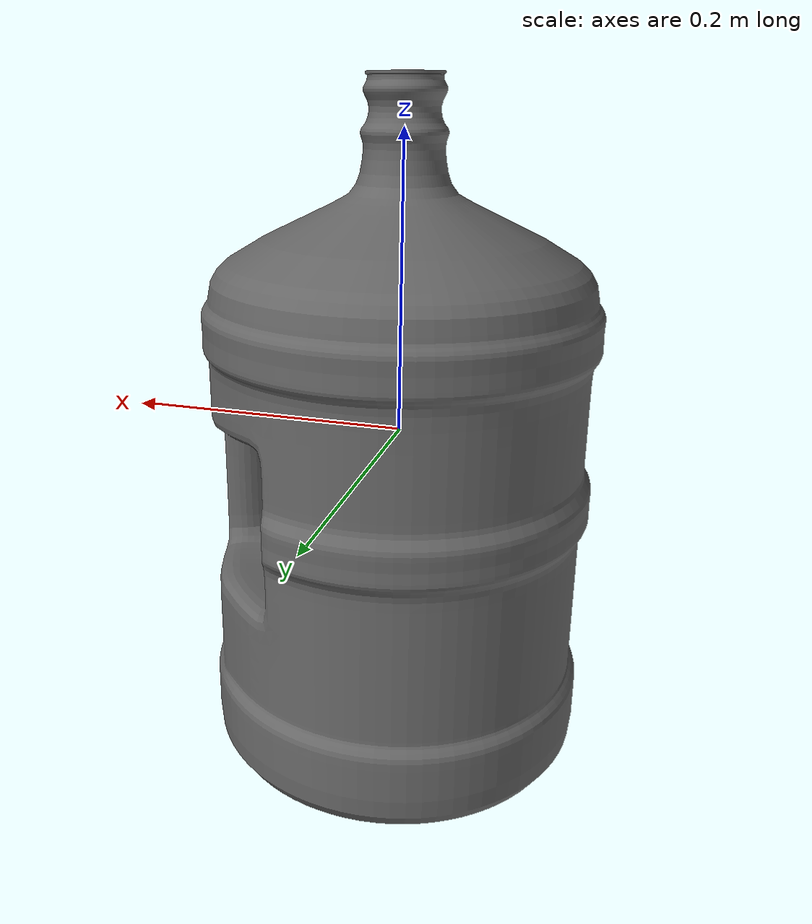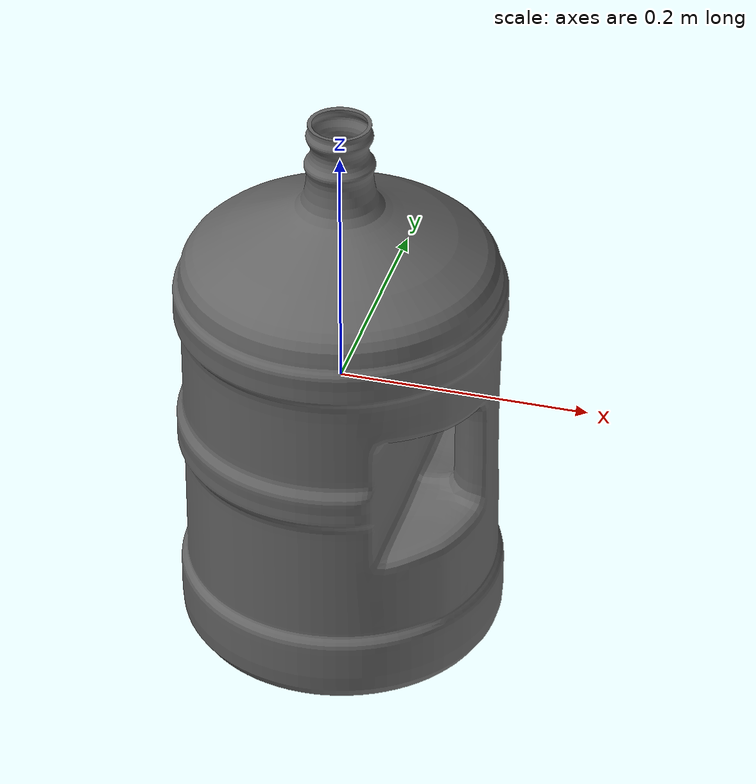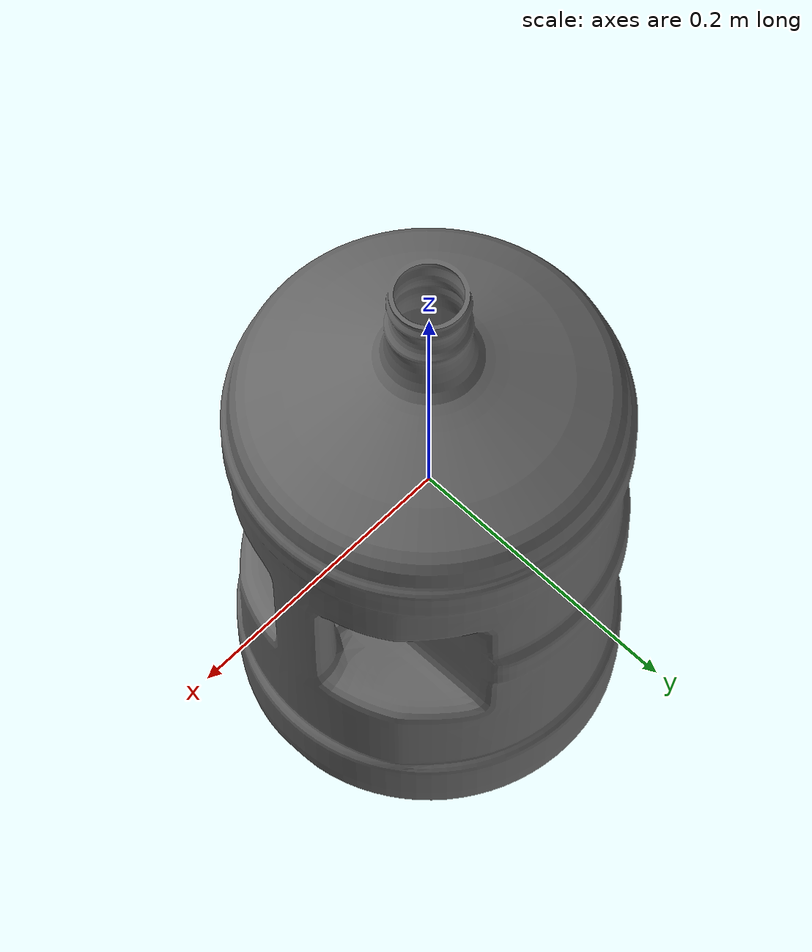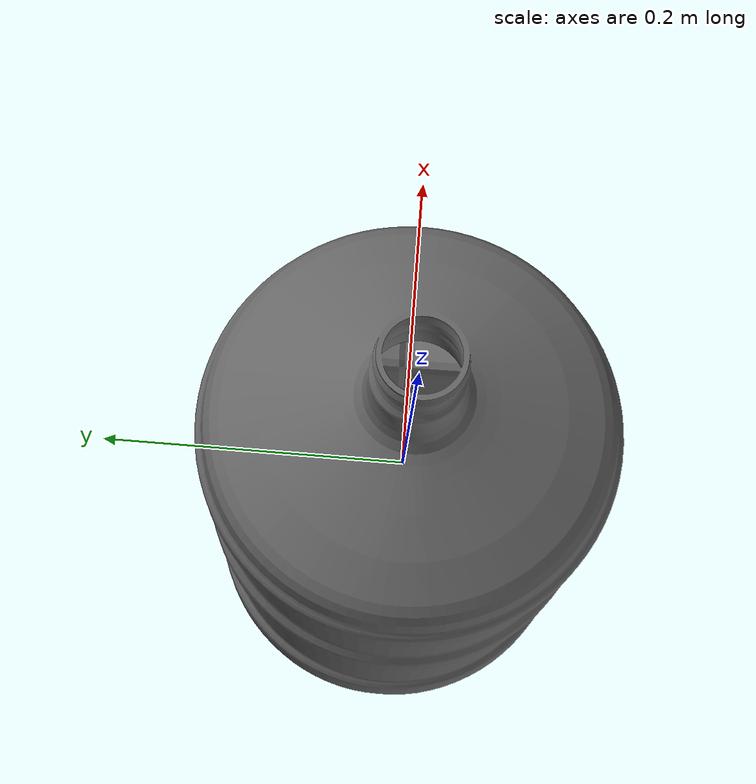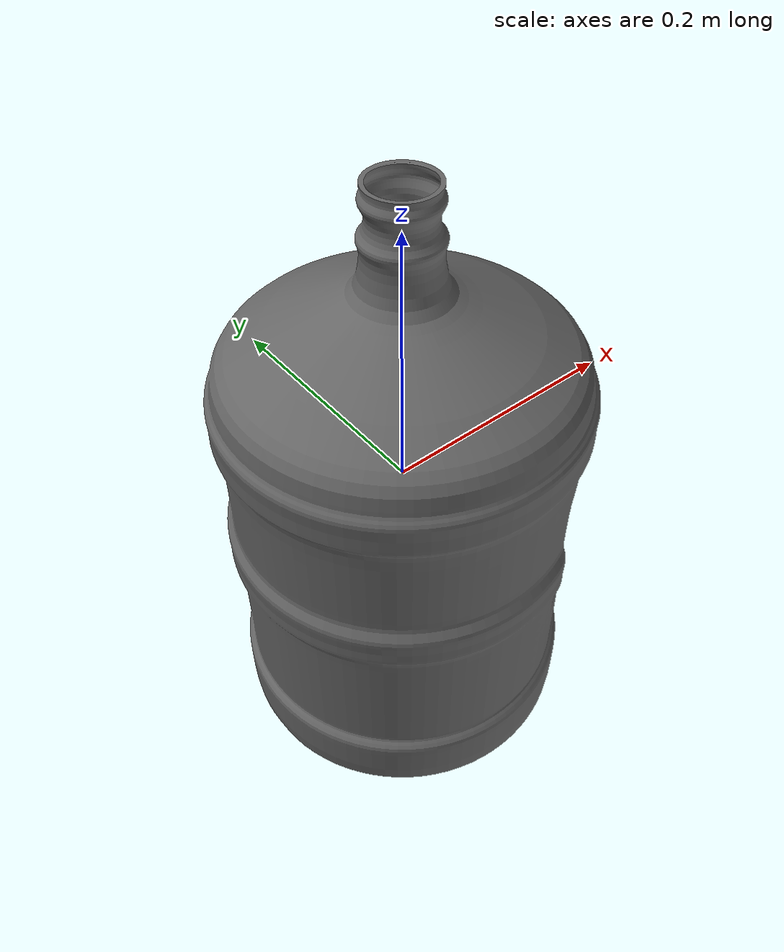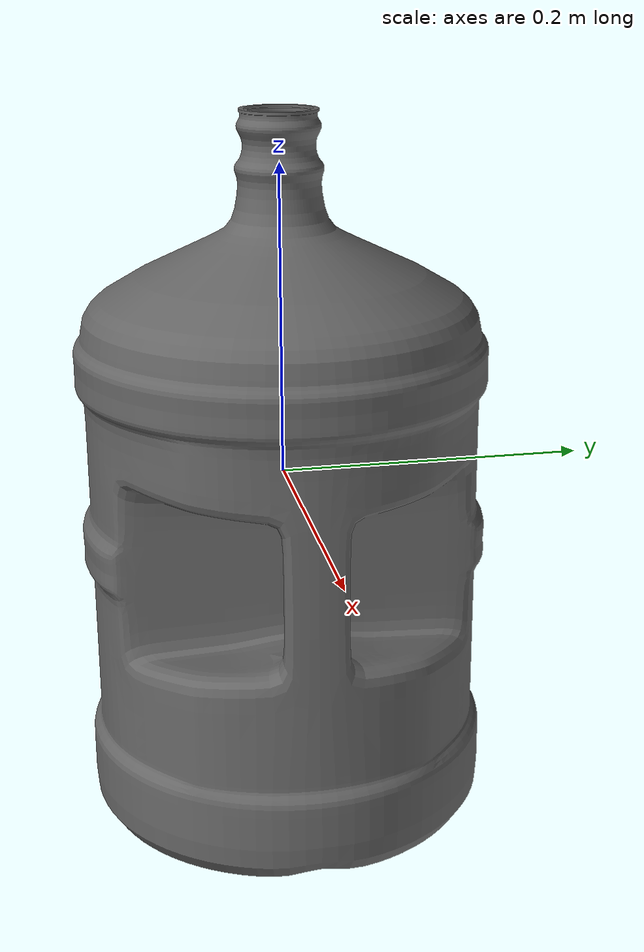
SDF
<?xml version="1.0"?>
<sdf version="1.7">
  <model name="jug_5_gallon">
    <!-- This is a model of an empty 5 gallon water jug. -->
    <!-- The model for a jug of uniform density. -->
    <link name="jug">
      <inertial>
        <mass>0.8</mass>
        <inertia>
          <ixx>0.00848008333333333</ixx>
          <ixy>0</ixy>
          <ixz>0</ixz>
          <iyy>0.012947533333333332</iyy>
          <iyz>0</iyz>
          <izz>0.01394175</izz>
        </inertia>
      </inertial>
        <visual name="jug_visual">
        <geometry>
          <mesh>
            <scale>1 1 1</scale>
            <uri>jug_water_5_gallon.obj</uri>
          </mesh>
        </geometry>
        <material>
          <diffuse>0.4 0.4 0.4 1.0</diffuse>
        </material>
      </visual>
      <collision name="jug_collision">
        <pose>0 0 -0.03 0 0 0</pose>
        <geometry>
          <cylinder>
            <radius>0.135</radius>
            <length>0.40</length>
          </cylinder>
        </geometry>
        <surface>
          <friction>
            <ode>
              <mu>0.5</mu>
              <mu2>0.5</mu2>
            </ode>
          </friction>
        </surface>
      </collision>
      <collision name="jug_top_collision">
        <pose>0 0 0.201 0 0 0</pose>
        <geometry>
          <cylinder>
            <radius>0.03</radius>
            <length>0.065</length>
          </cylinder>
        </geometry>
        <surface>
          <friction>
            <ode>
              <mu>0.5</mu>
              <mu2>0.5</mu2>
            </ode>
          </friction>
        </surface>
      </collision>
    </link>
  </model>
</sdf>
